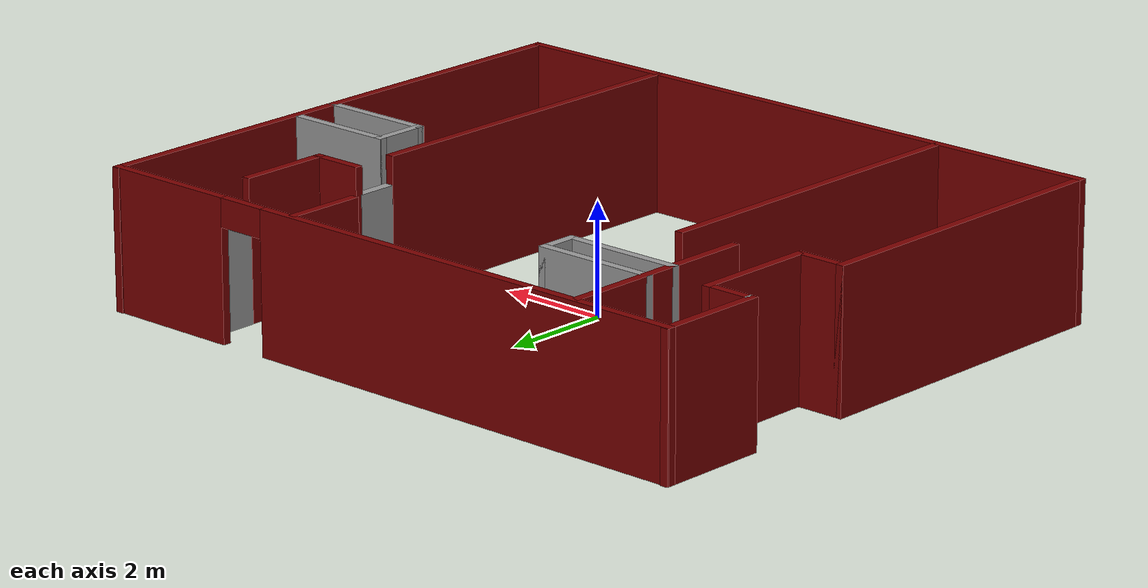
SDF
<?xml version='1.0'?>
<sdf version='1.6'>
  <model name='my_apartment'>
    <pose frame=''>0 0.02287 0 0 -0 0</pose>
    <link name='Door_10'>
      <collision name='Door_10_Collision'>
        <geometry>
          <box>
            <size>0.9 0.17 2</size>
          </box>
        </geometry>
        <pose frame=''>0 0 1 0 -0 0</pose>
      </collision>
      <visual name='Door_10_Visual'>
        <pose frame=''>0 0 1 0 -0 0</pose>
        <geometry>
          <box>
            <size>0.9 0.17 2</size>
          </box>
        </geometry>
        <material>
          <script>
            <uri>file://media/materials/scripts/gazebo.material</uri>
            <name>Gazebo/Grey</name>
          </script>
        </material>
      </visual>
      <pose frame=''>4.02192 4.47846 0 0 -0 1.56904</pose>
    </link>
    <link name='Door_11'>
      <collision name='Door_11_Collision'>
        <geometry>
          <box>
            <size>0.9 0.17 2</size>
          </box>
        </geometry>
        <pose frame=''>0 0 1 0 -0 0</pose>
      </collision>
      <visual name='Door_11_Visual'>
        <pose frame=''>0 0 1 0 -0 0</pose>
        <geometry>
          <box>
            <size>0.9 0.17 2</size>
          </box>
        </geometry>
        <material>
          <script>
            <uri>file://media/materials/scripts/gazebo.material</uri>
            <name>Gazebo/Grey</name>
          </script>
        </material>
      </visual>
      <pose frame=''>3.18154 1.88515 0 0 -0 1.57142</pose>
    </link>
    <link name='Door_8'>
      <collision name='Door_8_Collision'>
        <geometry>
          <box>
            <size>0.9 0.17 2</size>
          </box>
        </geometry>
        <pose frame=''>0 0 1 0 -0 0</pose>
      </collision>
      <visual name='Door_8_Visual'>
        <pose frame=''>0 0 1 0 -0 0</pose>
        <geometry>
          <box>
            <size>0.9 0.17 2</size>
          </box>
        </geometry>
        <material>
          <script>
            <uri>file://media/materials/scripts/gazebo.material</uri>
            <name>Gazebo/Grey</name>
          </script>
        </material>
      </visual>
      <pose frame=''>-3.58991 1.37189 0 0 -0 0</pose>
    </link>
    <link name='Wall_40'>
      <pose frame=''>0 5 0 0 -0 0</pose>
      <visual name='Wall_40_Visual_0'>
        <pose frame=''>-1.71889 0 1.25 0 -0 0</pose>
        <geometry>
          <box>
            <size>8.71223 0.15 2.5</size>
          </box>
        </geometry>
        <material>
          <script>
            <uri>file://media/materials/scripts/gazebo.material</uri>
            <name>Gazebo/Grey</name>
          </script>
          <ambient>0.47451 0 0 1</ambient>
        </material>
        <meta>
          <layer>0</layer>
        </meta>
      </visual>
      <collision name='Wall_40_Collision_0'>
        <geometry>
          <box>
            <size>8.71223 0.15 2.5</size>
          </box>
        </geometry>
        <pose frame=''>-1.71889 0 1.25 0 -0 0</pose>
      </collision>
      <visual name='Wall_40_Visual_1'>
        <pose frame=''>4.80611 0 1.25 0 -0 0</pose>
        <geometry>
          <box>
            <size>2.53777 0.15 2.5</size>
          </box>
        </geometry>
        <material>
          <script>
            <uri>file://media/materials/scripts/gazebo.material</uri>
            <name>Gazebo/Grey</name>
          </script>
          <ambient>0.47451 0 0 1</ambient>
        </material>
        <meta>
          <layer>0</layer>
        </meta>
      </visual>
      <collision name='Wall_40_Collision_1'>
        <geometry>
          <box>
            <size>2.53777 0.15 2.5</size>
          </box>
        </geometry>
        <pose frame=''>4.80611 0 1.25 0 -0 0</pose>
      </collision>
      <visual name='Wall_40_Visual_2'>
        <pose frame=''>3.08723 0 2.25 0 -0 0</pose>
        <geometry>
          <box>
            <size>0.9 0.15 0.5</size>
          </box>
        </geometry>
        <material>
          <script>
            <uri>file://media/materials/scripts/gazebo.material</uri>
            <name>Gazebo/Grey</name>
          </script>
          <ambient>0.47451 0 0 1</ambient>
        </material>
        <meta>
          <layer>0</layer>
        </meta>
      </visual>
      <collision name='Wall_40_Collision_2'>
        <geometry>
          <box>
            <size>0.9 0.15 0.5</size>
          </box>
        </geometry>
        <pose frame=''>3.08723 0 2.25 0 -0 0</pose>
      </collision>
    </link>
    <link name='Wall_41'>
      <collision name='Wall_41_Collision'>
        <geometry>
          <box>
            <size>10.1957 0.15 2.5</size>
          </box>
        </geometry>
        <pose frame=''>0 0 1.25 0 -0 0</pose>
      </collision>
      <visual name='Wall_41_Visual'>
        <pose frame=''>0 0 1.25 0 -0 0</pose>
        <geometry>
          <box>
            <size>10.1957 0.15 2.5</size>
          </box>
        </geometry>
        <material>
          <script>
            <uri>file://media/materials/scripts/gazebo.material</uri>
            <name>Gazebo/Grey</name>
          </script>
          <ambient>0.458824 0 0 1</ambient>
        </material>
        <meta>
          <layer>0</layer>
        </meta>
      </visual>
      <pose frame=''>6 0 0 0 0 -1.5708</pose>
    </link>
    <link name='Wall_42'>
      <collision name='Wall_42_Collision'>
        <geometry>
          <box>
            <size>12.15 0.15 2.5</size>
          </box>
        </geometry>
        <pose frame=''>0 0 1.25 0 -0 0</pose>
      </collision>
      <visual name='Wall_42_Visual'>
        <pose frame=''>0 0 1.25 0 -0 0</pose>
        <geometry>
          <box>
            <size>12.15 0.15 2.5</size>
          </box>
        </geometry>
        <material>
          <script>
            <uri>file://media/materials/scripts/gazebo.material</uri>
            <name>Gazebo/Grey</name>
          </script>
          <ambient>0.47451 0 0 1</ambient>
        </material>
        <meta>
          <layer>0</layer>
        </meta>
      </visual>
      <pose frame=''>0 -5.02287 0 0 -0 3.14159</pose>
    </link>
    <link name='Wall_43'>
      <collision name='Wall_43_Collision'>
        <geometry>
          <box>
            <size>6.15 0.15 2.5</size>
          </box>
        </geometry>
        <pose frame=''>0 0 1.25 0 -0 0</pose>
      </collision>
      <visual name='Wall_43_Visual'>
        <pose frame=''>0 0 1.25 0 -0 0</pose>
        <geometry>
          <box>
            <size>6.15 0.15 2.5</size>
          </box>
        </geometry>
        <material>
          <script>
            <uri>file://media/materials/scripts/gazebo.material</uri>
            <name>Gazebo/Grey</name>
          </script>
          <ambient>0.47451 0 0 1</ambient>
        </material>
        <meta>
          <layer>0</layer>
        </meta>
      </visual>
      <pose frame=''>-6 -2.02287 0 0 -0 1.5708</pose>
    </link>
    <link name='Wall_45'>
      <collision name='Wall_45_Collision'>
        <geometry>
          <box>
            <size>2.04574 0.15 2.5</size>
          </box>
        </geometry>
        <pose frame=''>0 0 1.25 0 -0 0</pose>
      </collision>
      <visual name='Wall_45_Visual'>
        <pose frame=''>0 0 1.25 0 -0 0</pose>
        <geometry>
          <box>
            <size>2.04574 0.15 2.5</size>
          </box>
        </geometry>
        <material>
          <script>
            <uri>file://media/materials/scripts/gazebo.material</uri>
            <name>Gazebo/Grey</name>
          </script>
          <ambient>0.47451 0 0 1</ambient>
        </material>
        <meta>
          <layer>0</layer>
        </meta>
      </visual>
      <pose frame=''>-6 4.075 0 0 0 -1.5708</pose>
    </link>
    <link name='Wall_47'>
      <collision name='Wall_47_Collision'>
        <geometry>
          <box>
            <size>0.15 0.15 2.5</size>
          </box>
        </geometry>
        <pose frame=''>0 0 1.25 0 -0 0</pose>
      </collision>
      <visual name='Wall_47_Visual'>
        <pose frame=''>0 0 1.25 0 -0 0</pose>
        <geometry>
          <box>
            <size>0.15 0.15 2.5</size>
          </box>
        </geometry>
        <material>
          <script>
            <uri>file://media/materials/scripts/gazebo.material</uri>
            <name>Gazebo/Grey</name>
          </script>
          <ambient>1 1 1 1</ambient>
        </material>
        <meta>
          <layer>0</layer>
        </meta>
      </visual>
      <pose frame=''>-6 3.12713 0 0 -0 0</pose>
    </link>
    <link name='Wall_51'>
      <collision name='Wall_51_Collision'>
        <geometry>
          <box>
            <size>1 0.15 2.5</size>
          </box>
        </geometry>
        <pose frame=''>0 0 1.25 0 -0 0</pose>
      </collision>
      <visual name='Wall_51_Visual'>
        <pose frame=''>0 0 1.25 0 -0 0</pose>
        <geometry>
          <box>
            <size>1 0.15 2.5</size>
          </box>
        </geometry>
        <material>
          <script>
            <uri>file://media/materials/scripts/gazebo.material</uri>
            <name>Gazebo/Grey</name>
          </script>
          <ambient>0.47451 0 0 1</ambient>
        </material>
        <meta>
          <layer>0</layer>
        </meta>
      </visual>
      <pose frame=''>-5.575 3.12713 0 0 -0 0</pose>
    </link>
    <link name='Wall_52'>
      <collision name='Wall_52_Collision'>
        <geometry>
          <box>
            <size>2.3 0.15 2.5</size>
          </box>
        </geometry>
        <pose frame=''>0 0 1.25 0 -0 0</pose>
      </collision>
      <visual name='Wall_52_Visual'>
        <pose frame=''>0 0 1.25 0 -0 0</pose>
        <geometry>
          <box>
            <size>2.3 0.15 2.5</size>
          </box>
        </geometry>
        <material>
          <script>
            <uri>file://media/materials/scripts/gazebo.material</uri>
            <name>Gazebo/Grey</name>
          </script>
          <ambient>0.47451 0 0 1</ambient>
        </material>
        <meta>
          <layer>0</layer>
        </meta>
      </visual>
      <pose frame=''>-5.15 2.05213 0 0 0 -1.5708</pose>
    </link>
    <link name='Wall_54'>
      <collision name='Wall_54_Collision'>
        <geometry>
          <box>
            <size>1 0.15 2.5</size>
          </box>
        </geometry>
        <pose frame=''>0 0 1.25 0 -0 0</pose>
      </collision>
      <visual name='Wall_54_Visual'>
        <pose frame=''>0 0 1.25 0 -0 0</pose>
        <geometry>
          <box>
            <size>1 0.15 2.5</size>
          </box>
        </geometry>
        <material>
          <script>
            <uri>file://media/materials/scripts/gazebo.material</uri>
            <name>Gazebo/Grey</name>
          </script>
          <ambient>0.47451 0 0 1</ambient>
        </material>
        <meta>
          <layer>0</layer>
        </meta>
      </visual>
      <pose frame=''>-5.575 0.97713 0 0 -0 0</pose>
    </link>
    <link name='Wall_56'>
      <collision name='Wall_56_Collision'>
        <geometry>
          <box>
            <size>3.75 0.15 2.5</size>
          </box>
        </geometry>
        <pose frame=''>0 0 1.25 0 -0 0</pose>
      </collision>
      <visual name='Wall_56_Visual'>
        <pose frame=''>0 0 1.25 0 -0 0</pose>
        <geometry>
          <box>
            <size>3.75 0.15 2.5</size>
          </box>
        </geometry>
        <material>
          <script>
            <uri>file://media/materials/scripts/gazebo.material</uri>
            <name>Gazebo/Grey</name>
          </script>
          <ambient>0.47451 0 0 1</ambient>
        </material>
        <meta>
          <layer>0</layer>
        </meta>
      </visual>
      <pose frame=''>-4.10991 3.17189 0 0 0 -1.5708</pose>
    </link>
    <link name='Wall_58'>
      <collision name='Wall_58_Collision'>
        <geometry>
          <box>
            <size>2.25 0.15 2.5</size>
          </box>
        </geometry>
        <pose frame=''>0 0 1.25 0 -0 0</pose>
      </collision>
      <visual name='Wall_58_Visual'>
        <pose frame=''>0 0 1.25 0 -0 0</pose>
        <geometry>
          <box>
            <size>2.25 0.15 2.5</size>
          </box>
        </geometry>
        <material>
          <script>
            <uri>file://media/materials/scripts/gazebo.material</uri>
            <name>Gazebo/Grey</name>
          </script>
          <ambient>1 1 1 1</ambient>
        </material>
        <meta>
          <layer>0</layer>
        </meta>
      </visual>
      <pose frame=''>-3.05992 3.39189 0 0 -0 0</pose>
    </link>
    <link name='Wall_59'>
      <collision name='Wall_59_Collision'>
        <geometry>
          <box>
            <size>0.75 0.15 2.5</size>
          </box>
        </geometry>
        <pose frame=''>0 0 1.25 0 -0 0</pose>
      </collision>
      <visual name='Wall_59_Visual'>
        <pose frame=''>0 0 1.25 0 -0 0</pose>
        <geometry>
          <box>
            <size>0.75 0.15 2.5</size>
          </box>
        </geometry>
        <material>
          <script>
            <uri>file://media/materials/scripts/gazebo.material</uri>
            <name>Gazebo/Grey</name>
          </script>
          <ambient>1 1 1 1</ambient>
        </material>
        <meta>
          <layer>0</layer>
        </meta>
      </visual>
      <pose frame=''>-2.00991 3.09189 0 0 0 -1.5708</pose>
    </link>
    <link name='Wall_60'>
      <collision name='Wall_60_Collision'>
        <geometry>
          <box>
            <size>2.25 0.15 2.5</size>
          </box>
        </geometry>
        <pose frame=''>0 0 1.25 0 -0 0</pose>
      </collision>
      <visual name='Wall_60_Visual'>
        <pose frame=''>0 0 1.25 0 -0 0</pose>
        <geometry>
          <box>
            <size>2.25 0.15 2.5</size>
          </box>
        </geometry>
        <material>
          <script>
            <uri>file://media/materials/scripts/gazebo.material</uri>
            <name>Gazebo/Grey</name>
          </script>
          <ambient>1 1 1 1</ambient>
        </material>
        <meta>
          <layer>0</layer>
        </meta>
      </visual>
      <pose frame=''>-3.05992 2.79189 0 0 -0 3.14159</pose>
    </link>
    <link name='Wall_62'>
      <collision name='Wall_62_Collision'>
        <geometry>
          <box>
            <size>6.5 0.15 2.5</size>
          </box>
        </geometry>
        <pose frame=''>0 0 1.25 0 -0 0</pose>
      </collision>
      <visual name='Wall_62_Visual'>
        <pose frame=''>0 0 1.25 0 -0 0</pose>
        <geometry>
          <box>
            <size>6.5 0.15 2.5</size>
          </box>
        </geometry>
        <material>
          <script>
            <uri>file://media/materials/scripts/gazebo.material</uri>
            <name>Gazebo/Grey</name>
          </script>
          <ambient>0.47451 0 0 1</ambient>
        </material>
        <meta>
          <layer>0</layer>
        </meta>
      </visual>
      <pose frame=''>-3.076 -1.78087 0 0 0 -1.5708</pose>
    </link>
    <link name='Wall_64'>
      <collision name='Wall_64_Collision'>
        <geometry>
          <box>
            <size>1.5 0.15 2.5</size>
          </box>
        </geometry>
        <pose frame=''>0 0 1.25 0 -0 0</pose>
      </collision>
      <visual name='Wall_64_Visual'>
        <pose frame=''>0 0 1.25 0 -0 0</pose>
        <geometry>
          <box>
            <size>1.5 0.15 2.5</size>
          </box>
        </geometry>
        <material>
          <script>
            <uri>file://media/materials/scripts/gazebo.material</uri>
            <name>Gazebo/Grey</name>
          </script>
          <ambient>0.47451 0 0 1</ambient>
        </material>
        <meta>
          <layer>0</layer>
        </meta>
      </visual>
      <pose frame=''>2 4.31413 0 0 0 -1.5708</pose>
    </link>
    <link name='Wall_66'>
      <collision name='Wall_66_Collision'>
        <geometry>
          <box>
            <size>1.75 0.15 2.5</size>
          </box>
        </geometry>
        <pose frame=''>0 0 1.25 0 -0 0</pose>
      </collision>
      <visual name='Wall_66_Visual'>
        <pose frame=''>0 0 1.25 0 -0 0</pose>
        <geometry>
          <box>
            <size>1.75 0.15 2.5</size>
          </box>
        </geometry>
        <material>
          <script>
            <uri>file://media/materials/scripts/gazebo.material</uri>
            <name>Gazebo/Grey</name>
          </script>
          <ambient>0.47451 0 0 1</ambient>
        </material>
        <meta>
          <layer>0</layer>
        </meta>
      </visual>
      <pose frame=''>4.02154 3.18013 0 0 0 -1.5708</pose>
    </link>
    <link name='Wall_68'>
      <collision name='Wall_68_Collision'>
        <geometry>
          <box>
            <size>1 0.15 2.5</size>
          </box>
        </geometry>
        <pose frame=''>0 0 1.25 0 -0 0</pose>
      </collision>
      <visual name='Wall_68_Visual'>
        <pose frame=''>0 0 1.25 0 -0 0</pose>
        <geometry>
          <box>
            <size>1 0.15 2.5</size>
          </box>
        </geometry>
        <material>
          <script>
            <uri>file://media/materials/scripts/gazebo.material</uri>
            <name>Gazebo/Grey</name>
          </script>
          <ambient>0.47451 0 0 1</ambient>
        </material>
        <meta>
          <layer>0</layer>
        </meta>
      </visual>
      <pose frame=''>3.59653 2.38014 0 0 -0 3.14159</pose>
    </link>
    <link name='Wall_70'>
      <collision name='Wall_70_Collision'>
        <geometry>
          <box>
            <size>6.7 0.15 2.5</size>
          </box>
        </geometry>
        <pose frame=''>0 0 1.25 0 -0 0</pose>
      </collision>
      <visual name='Wall_70_Visual'>
        <pose frame=''>0 0 1.25 0 -0 0</pose>
        <geometry>
          <box>
            <size>6.7 0.15 2.5</size>
          </box>
        </geometry>
        <material>
          <script>
            <uri>file://media/materials/scripts/gazebo.material</uri>
            <name>Gazebo/Grey</name>
          </script>
          <ambient>0.458824 0 0 1</ambient>
        </material>
        <meta>
          <layer>0</layer>
        </meta>
      </visual>
      <pose frame=''>3.17 -1.74787 0 0 0 -1.5708</pose>
    </link>
    <link name='Wall_72'>
      <collision name='Wall_72_Collision'>
        <geometry>
          <box>
            <size>2.15 0.15 2.5</size>
          </box>
        </geometry>
        <pose frame=''>0 0 1.25 0 -0 0</pose>
      </collision>
      <visual name='Wall_72_Visual'>
        <pose frame=''>0 0 1.25 0 -0 0</pose>
        <geometry>
          <box>
            <size>2.15 0.15 2.5</size>
          </box>
        </geometry>
        <material>
          <script>
            <uri>file://media/materials/scripts/gazebo.material</uri>
            <name>Gazebo/Grey</name>
          </script>
          <ambient>1 1 1 1</ambient>
        </material>
        <meta>
          <layer>0</layer>
        </meta>
      </visual>
      <pose frame=''>5 0.97713 0 0 -0 3.14159</pose>
    </link>
    <link name='Wall_73'>
      <collision name='Wall_73_Collision'>
        <geometry>
          <box>
            <size>1.05 0.15 2.5</size>
          </box>
        </geometry>
        <pose frame=''>0 0 1.25 0 -0 0</pose>
      </collision>
      <visual name='Wall_73_Visual'>
        <pose frame=''>0 0 1.25 0 -0 0</pose>
        <geometry>
          <box>
            <size>1.05 0.15 2.5</size>
          </box>
        </geometry>
        <material>
          <script>
            <uri>file://media/materials/scripts/gazebo.material</uri>
            <name>Gazebo/Grey</name>
          </script>
          <ambient>1 1 1 1</ambient>
        </material>
        <meta>
          <layer>0</layer>
        </meta>
      </visual>
      <pose frame=''>4 0.52713 0 0 0 -1.5708</pose>
    </link>
    <link name='Wall_74'>
      <collision name='Wall_74_Collision'>
        <geometry>
          <box>
            <size>2.15 0.15 2.5</size>
          </box>
        </geometry>
        <pose frame=''>0 0 1.25 0 -0 0</pose>
      </collision>
      <visual name='Wall_74_Visual'>
        <pose frame=''>0 0 1.25 0 -0 0</pose>
        <geometry>
          <box>
            <size>2.15 0.15 2.5</size>
          </box>
        </geometry>
        <material>
          <script>
            <uri>file://media/materials/scripts/gazebo.material</uri>
            <name>Gazebo/Grey</name>
          </script>
          <ambient>1 1 1 1</ambient>
        </material>
        <meta>
          <layer>0</layer>
        </meta>
      </visual>
      <pose frame=''>5 0.07713 0 0 -0 0</pose>
    </link>
    <static>1</static>
  </model>
</sdf>
